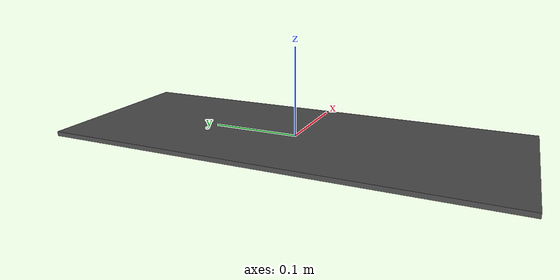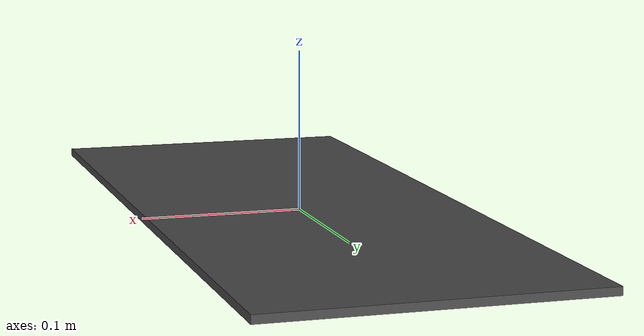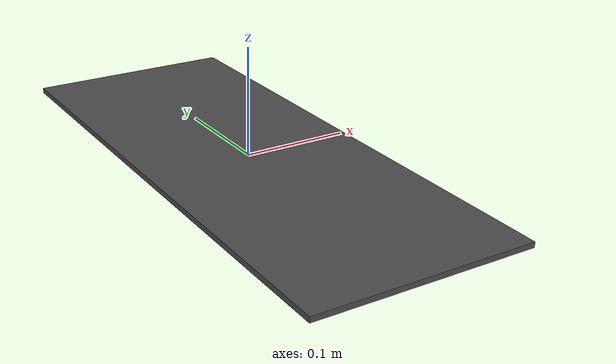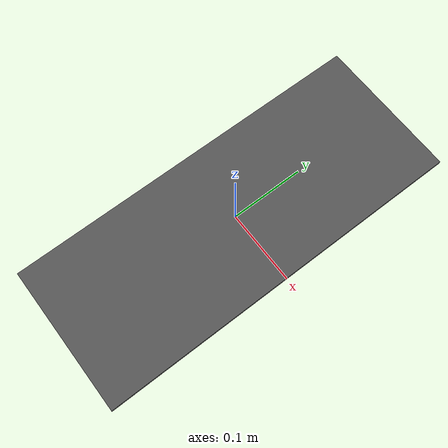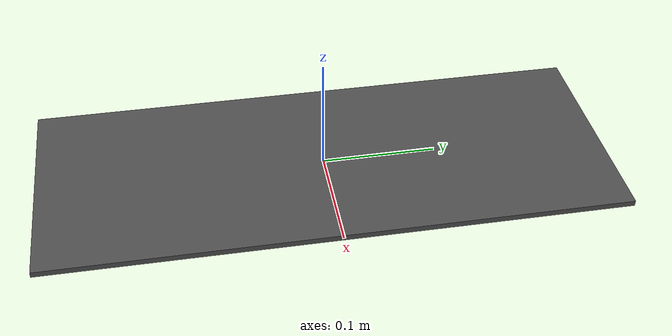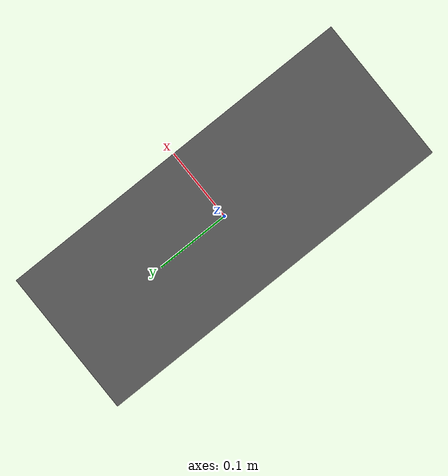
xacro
<?xml version="1.0" encoding="utf-8"  ?>
<robot name="red_intangible_ball" xmlns:xacro="http://www.ros.org/wiki/xacro">

	<xacro:arg name="size_x" default="0.20" />
	<xacro:arg name="size_y" default="0.50" />
	<xacro:arg name="size_z" default="0.005" />
	<xacro:arg name="add_world_link" default="True" />

	<xacro:property name="size_x" default="$(arg size_x)" />
	<xacro:property name="size_y" default="$(arg size_y)" />
	<xacro:property name="size_z" default="$(arg size_z)" />
	<xacro:property name="color_rgba" default="0.3 0.3 0.3 1.0" />
	<xacro:property name="add_world_link" default="$(arg add_world_link)" />

	<material name="support_color">
		<color rgba="${color_rgba}"/>
	</material>

	<xacro:macro name="box_inertial" params="mass x y z pose_xyz pose_rpy">
		<inertial>
			<origin xyz="${pose_xyz}" rpy="${pose_rpy}"/>
			<mass value="${mass}" />
			<inertia ixx="${0.083 * mass * (y*y + z*z)}" ixy="0.0" ixz="0.0" iyy="${0.083 * mass * (x*x + z*z)}" iyz="0.0" izz="${0.083 * mass * (x*x + y*y)}"/>
		</inertial>
	</xacro:macro>

	<link name="plate">
		<!-- The shin is made of a cylinder plus a sphere, the total length, is shin_height, so the length  of the two are detemrined accordingly -->
        <visual>
			<origin xyz="0 0 0" rpy="0 0 0"/>
            <geometry>
                <box size="${size_x} ${size_y} ${size_z}" />
            </geometry>
			<material name="support_color"/>
        </visual>
		<collision>
			<origin xyz="0 0 0" rpy="0 0 0"/>
            <geometry>
                <box size="${size_x} ${size_y} ${size_z}" />
            </geometry>
        </collision>
		<xacro:box_inertial mass="0.001" x="${size_x}" y="${size_y}" z="${size_z}" pose_xyz="0 0 0" pose_rpy="0 0 0"/>

		<contact>
				<lateral_friction value="0.9"/>
				<rolling_friction value="0.01"/>
				<restitution value="0.05"/>
			</contact>
	</link>
	<gazebo reference="plate">
		<visual name="visual">
			<material>
			<ambient>"${color_rgba}"</ambient>
			<diffuse>"${color_rgba}"</diffuse>
			</material>
      	</visual>
    </gazebo>
	<gazebo>
		<static>true</static>
	</gazebo>

	<xacro:if value="${add_world_link}">
		<link name="world"/>
		<joint name="world_joint" type="fixed">
			<parent link="world"/>
			<child link="plate"/>
		</joint>
	</xacro:if>

</robot>
